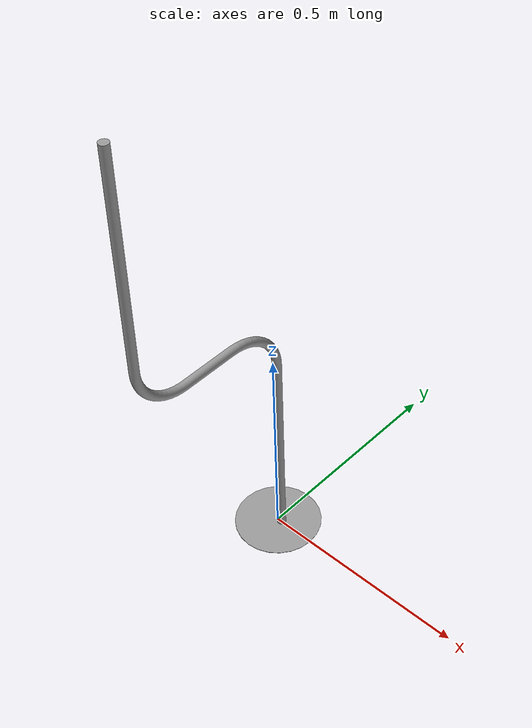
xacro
<?xml version="1.0" ?>
<robot name="pipe1_object" xmlns:xacro="http://ros.org/wiki/xacro">

  <!-- urdf -->
  <link name="object_base">
    <collision>
      <origin xyz="0 0 0" rpy="0 0 0" />
      <geometry>
        <cylinder length="0.001" radius="0.1"/>
      </geometry>
    </collision>
    <visual>
      <origin xyz="0 0 0" rpy="0 0 0" />
      <geometry>
        <cylinder length="0.001" radius="0.1"/>
      </geometry>
    </visual>
    <inertial>
      <mass value="100000" />
      <origin xyz="0 0 0" rpy="0 0 0" />
      <inertia ixx="1000" ixy="0" ixz="0" iyy="1000" iyz="0" izz="1000" />
    </inertial>
  </link>
  <link name="pipe1">
    <visual>
      <origin xyz="0 0 0" rpy="0 0 0" />
      <geometry>
        <mesh filename="package://kuka_kr10_gazebo/meshes/pipe.dae" />
      </geometry>
      <material name="Gazebo/Gray" />
    </visual>
    <collision>
      <origin xyz="0 0 0" rpy="0 0 0" />
      <geometry>
        <mesh filename="package://kuka_kr10_gazebo/meshes/pipe.dae" />
      </geometry>
      <material name="Gazebo/Gray" />
    </collision>
  </link>

  <joint name="object_base_joint" type="fixed">
    <origin xyz="0 -0.375 0" rpy="1.570796327 0 1.570796327"/>
    <parent link="object_base"/>
    <child link="pipe1"/>
  </joint>

  <!-- Gazebo-specific link properties -->
  <gazebo reference="object_base">
    <material>Gazebo/Gray</material>
    <turnGravityOff>false</turnGravityOff>
  </gazebo>
  <gazebo reference="pipe1">
    <material>Gazebo/Gray</material>
    <turnGravityOff>false</turnGravityOff>
  </gazebo>

</robot>
